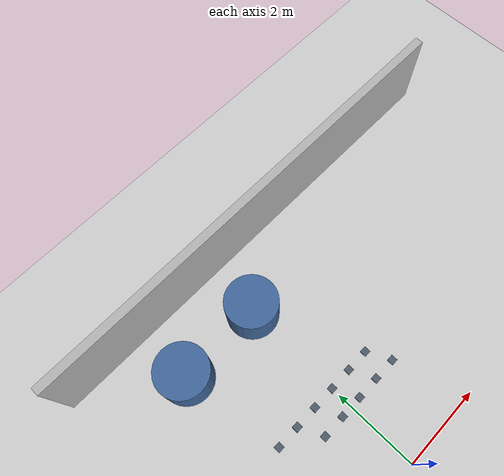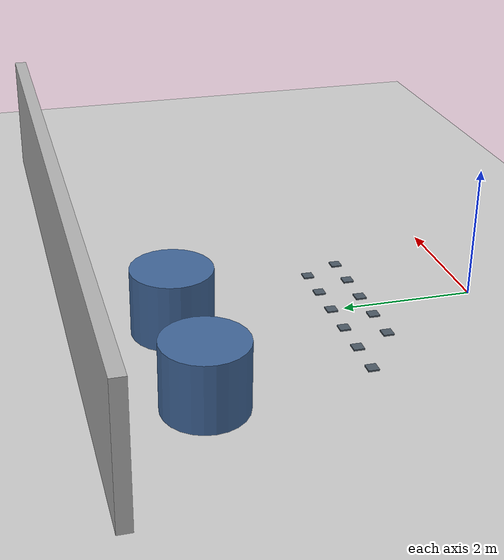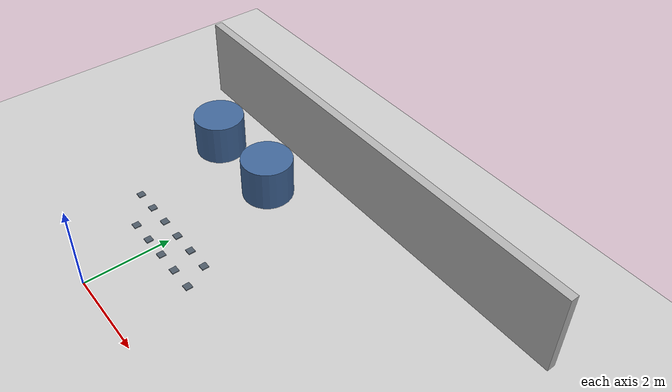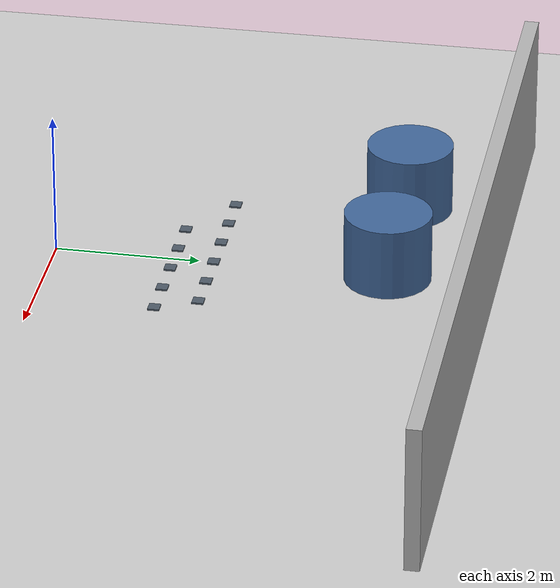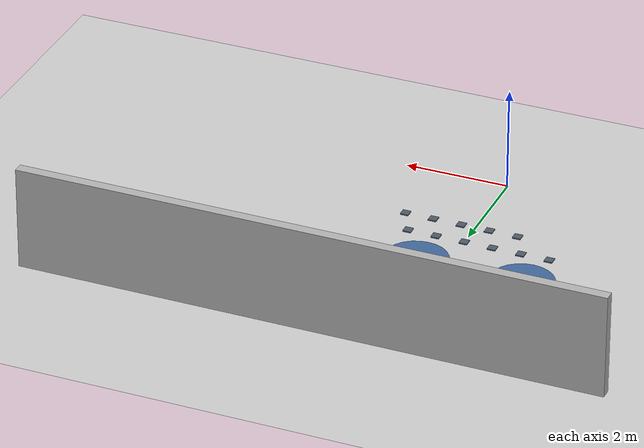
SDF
<sdf version="1.9">
 <world name="empty_ground">
  <model name="ground_plane">
   <static>true</static>
   <link name="link">
    <collision name="collision">
     <geometry><plane><normal>0 0 1</normal><size>100 100</size></plane></geometry>
     <surface>
      <friction>
       <ode><mu>1.5</mu><mu2>1.5</mu2></ode>
       <torsional><coefficient>0.0</coefficient></torsional>
      </friction>
     </surface>
    </collision>
    <visual name="visual">
     <geometry><plane><normal>0 0 1</normal><size>100 100</size></plane></geometry>
     <material><ambient>0.8 0.8 0.8 1</ambient><diffuse>0.8 0.8 0.8 1</diffuse></material>
    </visual>
   </link>
  </model>
  <model name="bump_9">
   <static>true</static>
   <pose>-1.650 2.200 0.012 0 0 0</pose>
   <link name="link">
    <collision name="collision">
     <geometry><box><size>0.16 0.16 0.024</size></box></geometry>
     <surface>
      <friction>
       <ode><mu>1.5</mu><mu2>1.5</mu2></ode>
       <torsional><coefficient>0.0</coefficient></torsional>
      </friction>
     </surface>
    </collision>
    <visual name="visual">
     <geometry><box><size>0.16 0.16 0.024</size></box></geometry>
     <material><ambient>0.25 0.3 0.35 1</ambient><diffuse>0.30 0.35 0.4 1</diffuse></material>
    </visual>
   </link>
  </model>
  <model name="bump_17">
   <static>true</static>
   <pose>-0.830 1.650 0.012 0 0 0</pose>
   <link name="link">
    <collision name="collision">
     <geometry><box><size>0.16 0.16 0.024</size></box></geometry>
     <surface>
      <friction>
       <ode><mu>1.5</mu><mu2>1.5</mu2></ode>
       <torsional><coefficient>0.0</coefficient></torsional>
      </friction>
     </surface>
    </collision>
    <visual name="visual">
     <geometry><box><size>0.16 0.16 0.024</size></box></geometry>
     <material><ambient>0.25 0.3 0.35 1</ambient><diffuse>0.30 0.35 0.4 1</diffuse></material>
    </visual>
   </link>
  </model>
  <model name="bump_18">
   <static>true</static>
   <pose>-1.100 2.200 0.012 0 0 0</pose>
   <link name="link">
    <collision name="collision">
     <geometry><box><size>0.16 0.16 0.024</size></box></geometry>
     <surface>
      <friction>
       <ode><mu>1.5</mu><mu2>1.5</mu2></ode>
       <torsional><coefficient>0.0</coefficient></torsional>
      </friction>
     </surface>
    </collision>
    <visual name="visual">
     <geometry><box><size>0.16 0.16 0.024</size></box></geometry>
     <material><ambient>0.25 0.3 0.35 1</ambient><diffuse>0.30 0.35 0.4 1</diffuse></material>
    </visual>
   </link>
  </model>
  <model name="bump_23">
   <static>true</static>
   <pose>-0.280 1.650 0.012 0 0 0</pose>
   <link name="link">
    <collision name="collision">
     <geometry><box><size>0.16 0.16 0.024</size></box></geometry>
     <surface>
      <friction>
       <ode><mu>1.5</mu><mu2>1.5</mu2></ode>
       <torsional><coefficient>0.0</coefficient></torsional>
      </friction>
     </surface>
    </collision>
    <visual name="visual">
     <geometry><box><size>0.16 0.16 0.024</size></box></geometry>
     <material><ambient>0.25 0.3 0.35 1</ambient><diffuse>0.30 0.35 0.4 1</diffuse></material>
    </visual>
   </link>
  </model>
  <model name="bump_24">
   <static>true</static>
   <pose>-0.550 2.200 0.012 0 0 0</pose>
   <link name="link">
    <collision name="collision">
     <geometry><box><size>0.16 0.16 0.024</size></box></geometry>
     <surface>
      <friction>
       <ode><mu>1.5</mu><mu2>1.5</mu2></ode>
       <torsional><coefficient>0.0</coefficient></torsional>
      </friction>
     </surface>
    </collision>
    <visual name="visual">
     <geometry><box><size>0.16 0.16 0.024</size></box></geometry>
     <material><ambient>0.25 0.3 0.35 1</ambient><diffuse>0.30 0.35 0.4 1</diffuse></material>
    </visual>
   </link>
  </model>
  <model name="bump_29">
   <static>true</static>
   <pose>0.270 1.650 0.012 0 0 0</pose>
   <link name="link">
    <collision name="collision">
     <geometry><box><size>0.16 0.16 0.024</size></box></geometry>
     <surface>
      <friction>
       <ode><mu>1.5</mu><mu2>1.5</mu2></ode>
       <torsional><coefficient>0.0</coefficient></torsional>
      </friction>
     </surface>
    </collision>
    <visual name="visual">
     <geometry><box><size>0.16 0.16 0.024</size></box></geometry>
     <material><ambient>0.25 0.3 0.35 1</ambient><diffuse>0.30 0.35 0.4 1</diffuse></material>
    </visual>
   </link>
  </model>
  <model name="bump_30">
   <static>true</static>
   <pose>0.000 2.200 0.012 0 0 0</pose>
   <link name="link">
    <collision name="collision">
     <geometry><box><size>0.16 0.16 0.024</size></box></geometry>
     <surface>
      <friction>
       <ode><mu>1.5</mu><mu2>1.5</mu2></ode>
       <torsional><coefficient>0.0</coefficient></torsional>
      </friction>
     </surface>
    </collision>
    <visual name="visual">
     <geometry><box><size>0.16 0.16 0.024</size></box></geometry>
     <material><ambient>0.25 0.3 0.35 1</ambient><diffuse>0.30 0.35 0.4 1</diffuse></material>
    </visual>
   </link>
  </model>
  <model name="bump_37">
   <static>true</static>
   <pose>0.820 1.650 0.012 0 0 0</pose>
   <link name="link">
    <collision name="collision">
     <geometry><box><size>0.16 0.16 0.024</size></box></geometry>
     <surface>
      <friction>
       <ode><mu>1.5</mu><mu2>1.5</mu2></ode>
       <torsional><coefficient>0.0</coefficient></torsional>
      </friction>
     </surface>
    </collision>
    <visual name="visual">
     <geometry><box><size>0.16 0.16 0.024</size></box></geometry>
     <material><ambient>0.25 0.3 0.35 1</ambient><diffuse>0.30 0.35 0.4 1</diffuse></material>
    </visual>
   </link>
  </model>
  <model name="bump_38">
   <static>true</static>
   <pose>0.550 2.200 0.012 0 0 0</pose>
   <link name="link">
    <collision name="collision">
     <geometry><box><size>0.16 0.16 0.024</size></box></geometry>
     <surface>
      <friction>
       <ode><mu>1.5</mu><mu2>1.5</mu2></ode>
       <torsional><coefficient>0.0</coefficient></torsional>
      </friction>
     </surface>
    </collision>
    <visual name="visual">
     <geometry><box><size>0.16 0.16 0.024</size></box></geometry>
     <material><ambient>0.25 0.3 0.35 1</ambient><diffuse>0.30 0.35 0.4 1</diffuse></material>
    </visual>
   </link>
  </model>
  <model name="bump_46">
   <static>true</static>
   <pose>1.370 1.650 0.012 0 0 0</pose>
   <link name="link">
    <collision name="collision">
     <geometry><box><size>0.16 0.16 0.024</size></box></geometry>
     <surface>
      <friction>
       <ode><mu>1.5</mu><mu2>1.5</mu2></ode>
       <torsional><coefficient>0.0</coefficient></torsional>
      </friction>
     </surface>
    </collision>
    <visual name="visual">
     <geometry><box><size>0.16 0.16 0.024</size></box></geometry>
     <material><ambient>0.25 0.3 0.35 1</ambient><diffuse>0.30 0.35 0.4 1</diffuse></material>
    </visual>
   </link>
  </model>
  <model name="bump_47">
   <static>true</static>
   <pose>1.100 2.200 0.012 0 0 0</pose>
   <link name="link">
    <collision name="collision">
     <geometry><box><size>0.16 0.16 0.024</size></box></geometry>
     <surface>
      <friction>
       <ode><mu>1.5</mu><mu2>1.5</mu2></ode>
       <torsional><coefficient>0.0</coefficient></torsional>
      </friction>
     </surface>
    </collision>
    <visual name="visual">
     <geometry><box><size>0.16 0.16 0.024</size></box></geometry>
     <material><ambient>0.25 0.3 0.35 1</ambient><diffuse>0.30 0.35 0.4 1</diffuse></material>
    </visual>
   </link>
  </model>
  <model name="wall_north">
   <static>true</static>
   <pose>1.500 6.000 1.000 0 0 0</pose>
   <link name="link">
    <collision name="collision"><geometry><box><size>11.2 0.2 2.0</size></box></geometry></collision>
    <visual name="visual">
     <geometry><box><size>11.2 0.2 2.0</size></box></geometry>
     <material><ambient>0.6 0.6 0.6 1</ambient><diffuse>0.7 0.7 0.7 1</diffuse></material>
    </visual>
   </link>
  </model>
  <model name="pillar_1">
   <static>true</static>
   <pose>-2.000 4.600 0.500 0 0 0</pose>
   <link name="link">
    <collision name="collision">
     <geometry><cylinder><radius>0.6</radius><length>1.0</length></cylinder></geometry>
    </collision>
    <visual name="visual">
     <geometry><cylinder><radius>0.6</radius><length>1.0</length></cylinder></geometry>
     <material><ambient>0.2 0.35 0.5 1</ambient><diffuse>0.25 0.4 0.6 1</diffuse></material>
    </visual>
   </link>
  </model>
  <model name="pillar_2">
   <static>true</static>
   <pose>0.000 4.600 0.500 0 0 0</pose>
   <link name="link">
    <collision name="collision">
     <geometry><cylinder><radius>0.6</radius><length>1.0</length></cylinder></geometry>
    </collision>
    <visual name="visual">
     <geometry><cylinder><radius>0.6</radius><length>1.0</length></cylinder></geometry>
     <material><ambient>0.2 0.35 0.5 1</ambient><diffuse>0.25 0.4 0.6 1</diffuse></material>
    </visual>
   </link>
  </model>
 </world>
</sdf>
